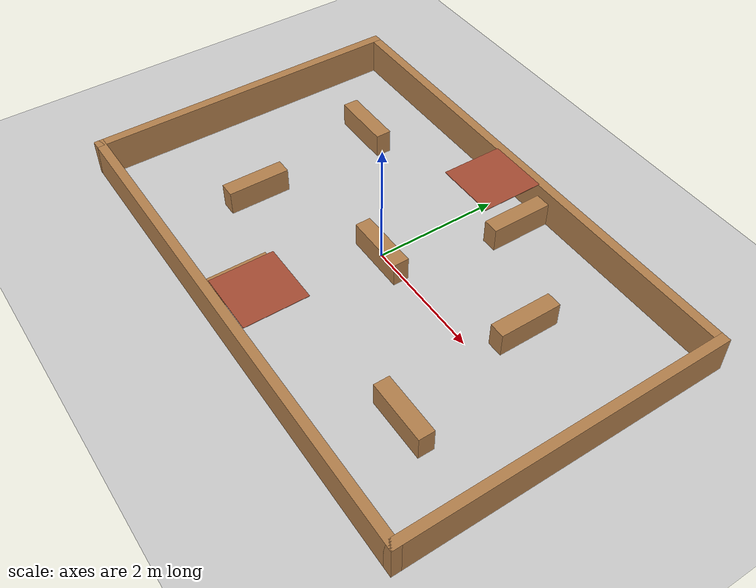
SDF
<sdf version="1.6">
 <world name="default">
  <light name="sun" type="directional">
   <pose>0 0 10 0 -0 0</pose>
   <diffuse>0.8 0.8 0.8 1</diffuse>
   <specular>0.1 0.1 0.1 1</specular>
   <attenuation>
    <range>1000</range>
    <constant>0.9</constant>
    <linear>0.01</linear>
    <quadratic>0.001</quadratic>
   </attenuation>
   <direction>-0.5 0.5 -1</direction>
  </light>
  <model name="ground_plane">
   <static>1</static>
   <link name="link">
    <collision name="collision">
     <geometry><plane><normal>0 0 1</normal><size>100 100</size></plane></geometry>
     <surface><friction><ode><mu>100</mu><mu2>50</mu2></ode></friction></surface>
    </collision>
    <visual name="visual">
     <cast_shadows>0</cast_shadows>
     <geometry><plane><normal>0 0 1</normal><size>100 100</size></plane></geometry>
     <material>
      <script><uri>file://media/materials/scripts/gazebo.material</uri><name>Gazebo/Grey</name></script>
     </material>
    </visual>
   </link>
  </model>
  <gravity>0 0 -9.8</gravity>
  <magnetic_field>6e-06 2.3e-05 -4.2e-05</magnetic_field>
  <atmosphere type="adiabatic"/>
  <physics name="default_physics" default="0" type="ode">
   <max_step_size>0.001</max_step_size>
   <real_time_factor>1</real_time_factor>
   <real_time_update_rate>1000</real_time_update_rate>
  </physics>
  <scene><ambient>0.4 0.4 0.4 1</ambient><background>0.7 0.7 0.7 1</background><shadows>1</shadows></scene>
  <spherical_coordinates>
   <surface_model>EARTH_WGS84</surface_model>
   <latitude_deg>0</latitude_deg>
   <longitude_deg>0</longitude_deg>
   <elevation>0</elevation>
   <heading_deg>0</heading_deg>
  </spherical_coordinates>
  <model name="ICRA3.0">
   <pose>0.084387 -0.062576 0 0 -0 0</pose>
   <link name="Wall_0">
    <collision name="Wall_0_Collision">
     <geometry><box><size>8.3 0.15 0.6</size></box></geometry>
     <pose>0 0 0.3 0 -0 0</pose>
    </collision>
    <visual name="Wall_0_Visual">
     <pose>0 0 0.3 0 -0 0</pose>
     <geometry><box><size>8.3 0.15 0.6</size></box></geometry>
     <material>
      <script><uri>file://media/materials/scripts/gazebo.material</uri><name>Gazebo/Wood</name></script>
      <ambient>1 1 1 1</ambient>
     </material>
    </visual>
    <pose>0 -2.575 0 0 -0 0</pose>
   </link>
   <link name="Wall_10">
    <collision name="Wall_10_Collision">
     <geometry><box><size>1 0.25 0.4</size></box></geometry>
     <pose>0 0 0.2 0 -0 0</pose>
    </collision>
    <visual name="Wall_10_Visual">
     <pose>0 0 0.2 0 -0 0</pose>
     <geometry><box><size>1 0.25 0.4</size></box></geometry>
     <material>
      <script><uri>file://media/materials/scripts/gazebo.material</uri><name>Gazebo/Wood</name></script>
      <ambient>1 1 1 1</ambient>
     </material>
    </visual>
    <pose>0.625 2 0 0 0 -1.5708</pose>
   </link>
   <link name="Wall_12">
    <collision name="Wall_12_Collision">
     <geometry><box><size>1 0.25 0.4</size></box></geometry>
     <pose>0 0 0.2 0 -0 0</pose>
    </collision>
    <visual name="Wall_12_Visual">
     <pose>0 0 0.2 0 -0 0</pose>
     <geometry><box><size>1 0.25 0.4</size></box></geometry>
     <material>
      <script><uri>file://media/materials/scripts/gazebo.material</uri><name>Gazebo/Wood</name></script>
      <ambient>1 1 1 1</ambient>
     </material>
    </visual>
    <pose>-0.625 -2 0 0 0 -1.5708</pose>
   </link>
   <link name="Wall_14">
    <collision name="Wall_14_Collision">
     <geometry><box><size>1 0.25 0.4</size></box></geometry>
     <pose>0 0 0.2 0 -0 0</pose>
    </collision>
    <visual name="Wall_14_Visual">
     <pose>0 0 0.2 0 -0 0</pose>
     <geometry><box><size>1 0.25 0.4</size></box></geometry>
     <material>
      <script><uri>file://media/materials/scripts/gazebo.material</uri><name>Gazebo/Wood</name></script>
      <ambient>1 1 1 1</ambient>
     </material>
    </visual>
    <pose>2.55 -1.375 0 0 -0 3.14159</pose>
   </link>
   <link name="Wall_16">
    <collision name="Wall_16_Collision">
     <geometry><box><size>1 0.25 0.4</size></box></geometry>
     <pose>0 0 0.2 0 -0 0</pose>
    </collision>
    <visual name="Wall_16_Visual">
     <pose>0 0 0.2 0 -0 0</pose>
     <geometry><box><size>1 0.25 0.4</size></box></geometry>
     <material>
      <script><uri>file://media/materials/scripts/gazebo.material</uri><name>Gazebo/Wood</name></script>
      <ambient>1 1 1 1</ambient>
     </material>
    </visual>
    <pose>0 0 0 0 -0 3.14159</pose>
   </link>
   <link name="Wall_18">
    <collision name="Wall_18_Collision">
     <geometry><box><size>1 0.25 0.4</size></box></geometry>
     <pose>0 0 0.2 0 -0 0</pose>
    </collision>
    <visual name="Wall_18_Visual">
     <pose>0 0 0.2 0 -0 0</pose>
     <geometry><box><size>1 0.25 0.4</size></box></geometry>
     <material>
      <script><uri>file://media/materials/scripts/gazebo.material</uri><name>Gazebo/Wood</name></script>
      <ambient>1 1 1 1</ambient>
     </material>
    </visual>
    <pose>-2.225 -0.85 0 0 -0 1.5708</pose>
   </link>
   <link name="Wall_2">
    <collision name="Wall_2_Collision">
     <geometry><box><size>5.3 0.15 0.6</size></box></geometry>
     <pose>0 0 0.3 0 -0 0</pose>
    </collision>
    <visual name="Wall_2_Visual">
     <pose>0 0 0.3 0 -0 0</pose>
     <geometry><box><size>5.3 0.15 0.6</size></box></geometry>
     <material>
      <script><uri>file://media/materials/scripts/gazebo.material</uri><name>Gazebo/Wood</name></script>
      <ambient>1 1 1 1</ambient>
     </material>
    </visual>
    <pose>-4.075 0 0 0 -0 1.5708</pose>
   </link>
   <link name="Wall_20">
    <collision name="Wall_20_Collision">
     <geometry><box><size>1 0.25 0.4</size></box></geometry>
     <pose>0 0 0.2 0 -0 0</pose>
    </collision>
    <visual name="Wall_20_Visual">
     <pose>0 0 0.2 0 -0 0</pose>
     <geometry><box><size>1 0.25 0.4</size></box></geometry>
     <material>
      <script><uri>file://media/materials/scripts/gazebo.material</uri><name>Gazebo/Wood</name></script>
      <ambient>1 1 1 1</ambient>
     </material>
    </visual>
    <pose>-2.5 1.375 0 0 -0 3.14159</pose>
   </link>
   <link name="Wall_4">
    <collision name="Wall_4_Collision">
     <geometry><box><size>8.3 0.15 0.6</size></box></geometry>
     <pose>0 0 0.3 0 -0 0</pose>
    </collision>
    <visual name="Wall_4_Visual">
     <pose>0 0 0.3 0 -0 0</pose>
     <geometry><box><size>8.3 0.15 0.6</size></box></geometry>
     <material>
      <script><uri>file://media/materials/scripts/gazebo.material</uri><name>Gazebo/Wood</name></script>
      <ambient>1 1 1 1</ambient>
     </material>
    </visual>
    <pose>0 2.575 0 0 -0 0</pose>
   </link>
   <link name="Wall_57">
    <collision name="Wall_57_Collision">
     <geometry><box><size>0.6 0.02 0.02</size></box></geometry>
     <pose>0 0 0.01 0 -0 0</pose>
    </collision>
    <visual name="Wall_57_Visual">
     <pose>0 0 0.01 0 -0 0</pose>
     <geometry><box><size>0.6 0.02 0.02</size></box></geometry>
     <material>
      <script><uri>file://media/materials/scripts/gazebo.material</uri><name>Gazebo/CeilingTiled</name></script>
      <ambient>0.760784 0.662745 0.627451 1</ambient>
     </material>
    </visual>
    <pose>0 2.2 0.6 0 0 -1.5708</pose>
   </link>
   <link name="Wall_59">
    <collision name="Wall_59_Collision">
     <geometry><box><size>0.6 0.02 0.02</size></box></geometry>
     <pose>0 0 0.01 0 -0 0</pose>
    </collision>
    <visual name="Wall_59_Visual">
     <pose>0 0 0.01 0 -0 0</pose>
     <geometry><box><size>0.6 0.02 0.02</size></box></geometry>
     <material>
      <script><uri>file://media/materials/scripts/gazebo.material</uri><name>Gazebo/CeilingTiled</name></script>
      <ambient>1 1 1 1</ambient>
     </material>
    </visual>
    <pose>0 -2.2 0.6 0 -0 1.5708</pose>
   </link>
   <link name="Wall_6">
    <collision name="Wall_6_Collision">
     <geometry><box><size>5.3 0.15 0.6</size></box></geometry>
     <pose>0 0 0.3 0 -0 0</pose>
    </collision>
    <visual name="Wall_6_Visual">
     <pose>0 0 0.3 0 -0 0</pose>
     <geometry><box><size>5.3 0.15 0.6</size></box></geometry>
     <material>
      <script><uri>file://media/materials/scripts/gazebo.material</uri><name>Gazebo/Wood</name></script>
      <ambient>1 1 1 1</ambient>
     </material>
    </visual>
    <pose>4.075 0 0 0 0 -1.5708</pose>
   </link>
   <link name="Wall_63">
    <collision name="Wall_63_Collision">
     <geometry><box><size>1.01 1 0.01</size></box></geometry>
     <pose>0 0 0.005 0 -0 0</pose>
    </collision>
    <visual name="Wall_63_Visual">
     <pose>0 0 0.005 0 -0 0</pose>
     <geometry><box><size>1.01 1 0.01</size></box></geometry>
     <material>
      <script><uri>file://media/materials/scripts/gazebo.material</uri><name>Gazebo/Bricks</name></script>
      <ambient>1 1 1 1</ambient>
     </material>
    </visual>
    <pose>0 1.995 0.62 0 0 -1.5708</pose>
   </link>
   <link name="Wall_65">
    <collision name="Wall_65_Collision">
     <geometry><box><size>1.01 1 0.01</size></box></geometry>
     <pose>0 0 0.005 0 -0 0</pose>
    </collision>
    <visual name="Wall_65_Visual">
     <pose>0 0 0.005 0 -0 0</pose>
     <geometry><box><size>1.01 1 0.01</size></box></geometry>
     <material>
      <script><uri>file://media/materials/scripts/gazebo.material</uri><name>Gazebo/Bricks</name></script>
      <ambient>1 1 1 1</ambient>
     </material>
    </visual>
    <pose>0 -1.995 0.62 0 -0 1.5708</pose>
   </link>
   <link name="Wall_8">
    <collision name="Wall_8_Collision">
     <geometry><box><size>1 0.25 0.4</size></box></geometry>
     <pose>0 0 0.2 0 -0 0</pose>
    </collision>
    <visual name="Wall_8_Visual">
     <pose>0 0 0.2 0 -0 0</pose>
     <geometry><box><size>1 0.25 0.4</size></box></geometry>
     <material>
      <script><uri>file://media/materials/scripts/gazebo.material</uri><name>Gazebo/Wood</name></script>
      <ambient>1 1 1 1</ambient>
     </material>
    </visual>
    <pose>2.225 0.85 0 0 0 -1.5708</pose>
   </link>
   <static>1</static>
  </model>
 </world>
</sdf>
